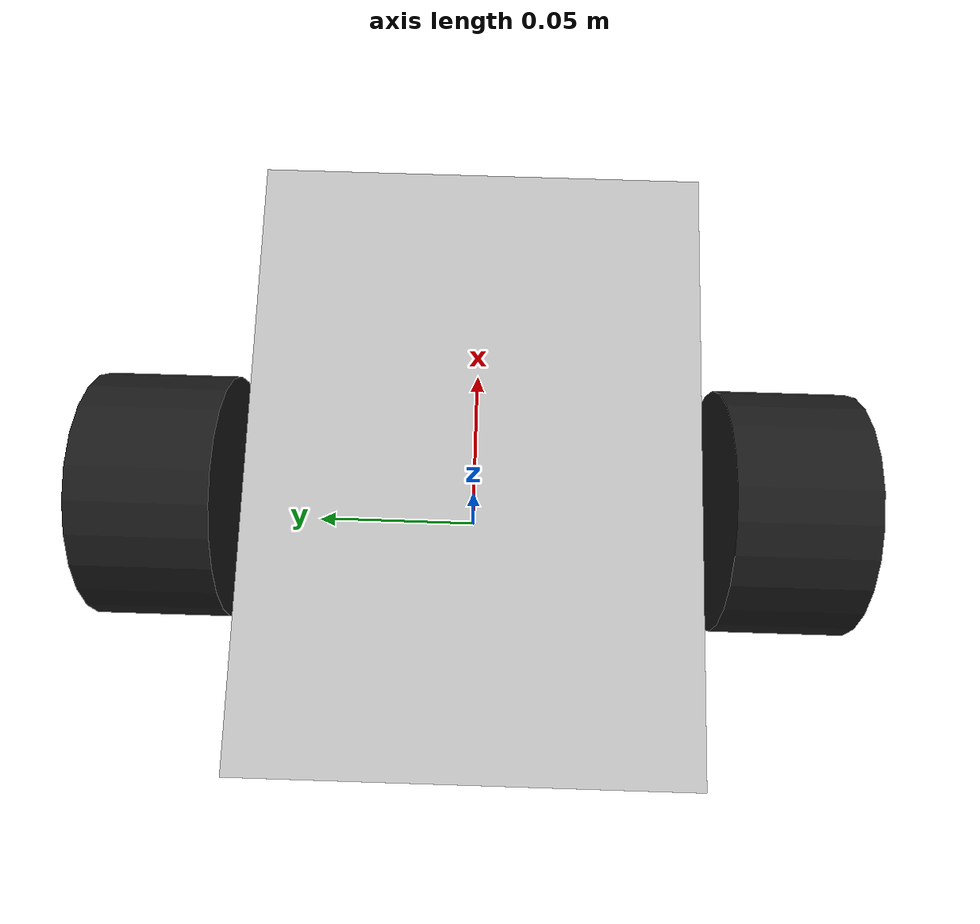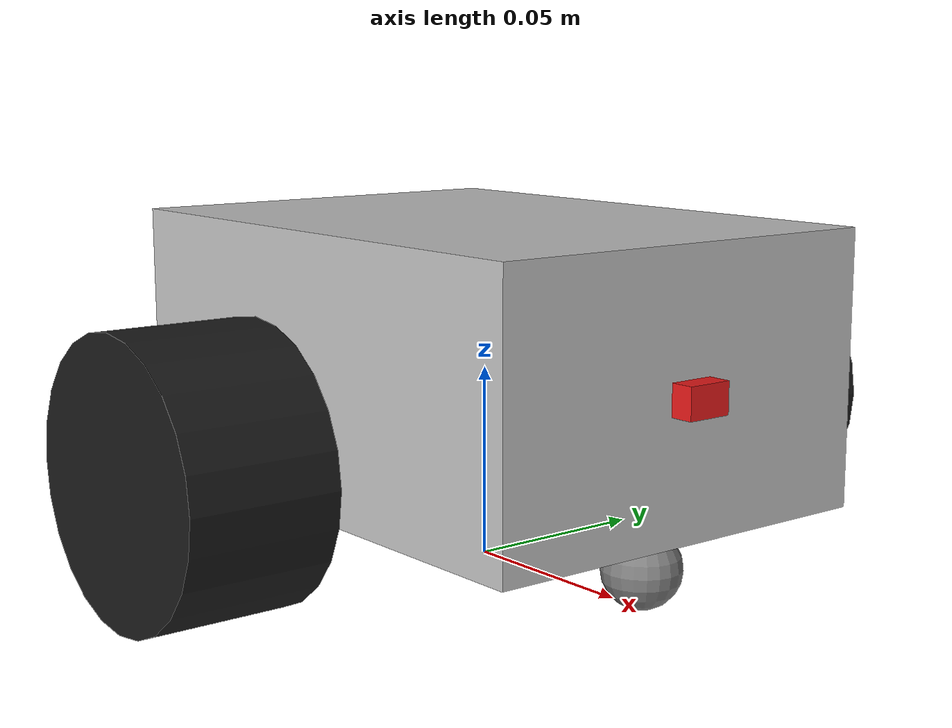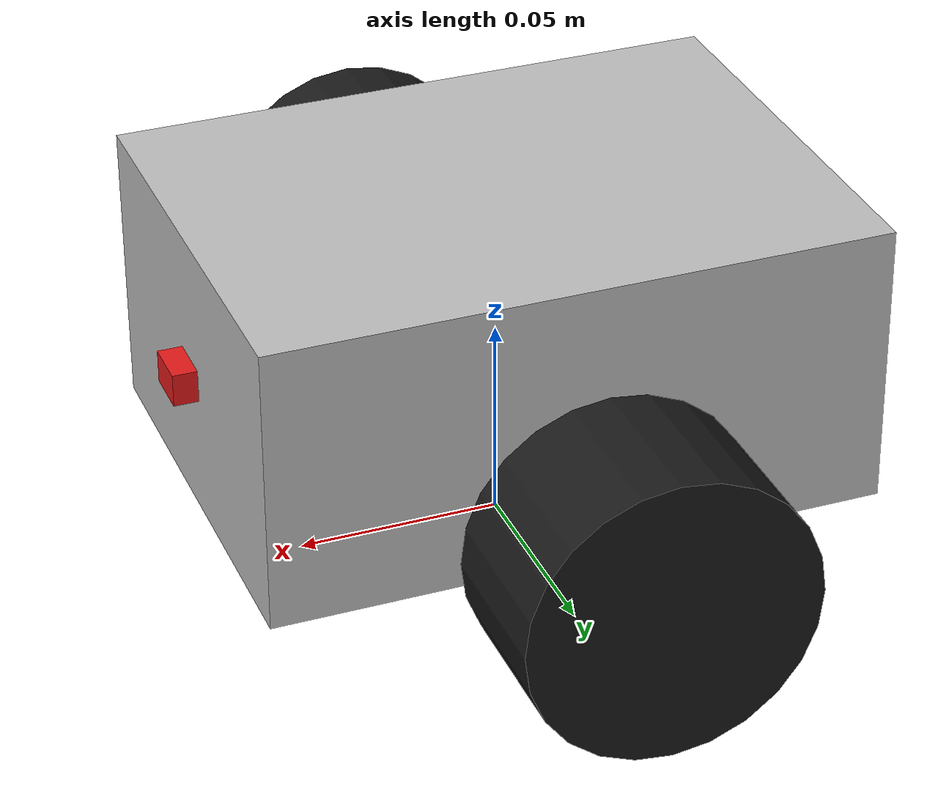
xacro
<?xml version="1.0"?>
<robot name="tof_robot" xmlns:xacro="http://www.ros.org/wiki/xacro">

  <xacro:property name="body_l"     value="0.150"/>
  <xacro:property name="body_w"     value="0.110"/>
  <xacro:property name="body_h"     value="0.070"/>
  <xacro:property name="body_mass"  value="1.5"/>
  <xacro:property name="wheel_r"    value="0.035"/>
  <xacro:property name="wheel_w"    value="0.038"/>
  <xacro:property name="wheel_sep"  value="0.175"/>
  <xacro:property name="wheel_mass" value="0.150"/>
  <xacro:property name="body_cz"    value="0.054"/>
  <xacro:property name="wj_z"       value="-0.019"/>
  <xacro:property name="wj_y"       value="0.0875"/>
  <xacro:property name="cast_r"     value="0.010"/>
  <xacro:property name="cast_fx"    value="0.060"/>
  <xacro:property name="cast_rx"    value="-0.060"/>
  <xacro:property name="cast_z"     value="-0.044"/>
  <xacro:property name="cast_mass"  value="0.050"/>

  <material name="silver"><color rgba="0.75 0.75 0.75 1.0"/></material>
  <material name="black" ><color rgba="0.10 0.10 0.10 1.0"/></material>
  <material name="gray"  ><color rgba="0.50 0.50 0.50 1.0"/></material>
  <material name="red"   ><color rgba="0.90 0.10 0.10 1.0"/></material>
  <material name="green" ><color rgba="0.10 0.80 0.10 1.0"/></material>

  <xacro:macro name="box_inertia" params="m l w h">
    <inertial>
      <mass value="${m}"/>
      <inertia ixx="${m*(w*w+h*h)/12}" ixy="0" ixz="0"
               iyy="${m*(l*l+h*h)/12}" iyz="0"
               izz="${m*(l*l+w*w)/12}"/>
    </inertial>
  </xacro:macro>

  <xacro:macro name="cylinder_inertia" params="m r h">
    <inertial>
      <mass value="${m}"/>
      <inertia ixx="${m*(3*r*r+h*h)/12}" ixy="0" ixz="0"
               iyy="${m*(3*r*r+h*h)/12}" iyz="0"
               izz="${m*r*r/2}"/>
    </inertial>
  </xacro:macro>

  <xacro:macro name="sphere_inertia" params="m r">
    <inertial>
      <mass value="${m}"/>
      <inertia ixx="${2*m*r*r/5}" ixy="0" ixz="0"
               iyy="${2*m*r*r/5}" iyz="0"
               izz="${2*m*r*r/5}"/>
    </inertial>
  </xacro:macro>

  <xacro:macro name="drive_wheel" params="name y_sign">
    <link name="${name}_wheel_link">
      <visual>
        <origin xyz="0 0 0" rpy="0 0 0"/>
        <geometry><cylinder radius="${wheel_r}" length="${wheel_w}"/></geometry>
        <material name="black"/>
      </visual>
      <collision>
        <origin xyz="0 0 0" rpy="0 0 0"/>
        <geometry><cylinder radius="${wheel_r}" length="${wheel_w}"/></geometry>
      </collision>
      <xacro:cylinder_inertia m="${wheel_mass}" r="${wheel_r}" h="${wheel_w}"/>
    </link>
    <joint name="${name}_wheel_joint" type="continuous">
      <parent link="base_link"/>
      <child  link="${name}_wheel_link"/>
      <origin xyz="0 ${y_sign*wj_y} ${wj_z}" rpy="${pi/2} 0 0"/>
      <axis   xyz="0 0 1"/>
      <dynamics damping="0.01" friction="0.1"/>
    </joint>
  </xacro:macro>

  <xacro:macro name="caster_wheel" params="name cx">
    <link name="${name}_caster_link">
      <visual>
        <origin xyz="0 0 0" rpy="0 0 0"/>
        <geometry><sphere radius="${cast_r}"/></geometry>
        <material name="gray"/>
      </visual>
      <collision>
        <origin xyz="0 0 0" rpy="0 0 0"/>
        <geometry><sphere radius="${cast_r}"/></geometry>
      </collision>
      <xacro:sphere_inertia m="${cast_mass}" r="${cast_r}"/>
    </link>
    <joint name="${name}_caster_joint" type="fixed">
      <parent link="base_link"/>
      <child  link="${name}_caster_link"/>
      <origin xyz="${cx} 0 ${cast_z}" rpy="0 0 0"/>
    </joint>
  </xacro:macro>

  <!-- TF ROOT: base_footprint at ground level -->
  <link name="base_footprint"/>

  <joint name="base_footprint_to_base" type="fixed">
    <parent link="base_footprint"/>
    <child  link="base_link"/>
    <origin xyz="0 0 ${body_cz}" rpy="0 0 0"/>
  </joint>

  <!-- CHASSIS -->
  <link name="base_link">
    <visual>
      <origin xyz="0 0 0" rpy="0 0 0"/>
      <geometry><box size="${body_l} ${body_w} ${body_h}"/></geometry>
      <material name="silver"/>
    </visual>
    <collision>
      <origin xyz="0 0 0" rpy="0 0 0"/>
      <geometry><box size="${body_l} ${body_w} ${body_h}"/></geometry>
    </collision>
    <xacro:box_inertia m="${body_mass}" l="${body_l}" w="${body_w}" h="${body_h}"/>
  </link>

  <!-- DRIVE WHEELS -->
  <xacro:drive_wheel name="left"  y_sign=" 1"/>
  <xacro:drive_wheel name="right" y_sign="-1"/>

  <!-- CASTER WHEELS -->
  <xacro:caster_wheel name="front" cx="${cast_fx}"/>
  <xacro:caster_wheel name="rear"  cx="${cast_rx}"/>

  <!-- TOF SENSOR: FIXED front face, no servo, no rotation -->
  <link name="tof_link">
    <visual>
      <origin xyz="0 0 0" rpy="0 0 0"/>
      <geometry><box size="0.012 0.012 0.008"/></geometry>
      <material name="red"/>
    </visual>
    <collision>
      <origin xyz="0 0 0" rpy="0 0 0"/>
      <geometry><box size="0.012 0.012 0.008"/></geometry>
    </collision>
    <inertial>
      <mass value="0.008"/>
      <inertia ixx="1e-7" ixy="0" ixz="0" iyy="1e-7" iyz="0" izz="1e-7"/>
    </inertial>
  </link>
  <joint name="tof_joint" type="fixed">
    <parent link="base_link"/>
    <child  link="tof_link"/>
    <origin xyz="${body_l/2} 0 0" rpy="0 0 0"/>
  </joint>

  <!-- LASER FRAME: origin of LaserScan messages -->
  <link name="laser_frame"/>
  <joint name="laser_frame_joint" type="fixed">
    <parent link="tof_link"/>
    <child  link="laser_frame"/>
    <origin xyz="0 0 0" rpy="0 0 0"/>
  </joint>

  <!-- IMU: GY-87 MPU6050 -->
  <link name="imu_link">
    <visual>
      <origin xyz="0 0 0" rpy="0 0 0"/>
      <geometry><box size="0.021 0.016 0.004"/></geometry>
      <material name="green"/>
    </visual>
    <collision>
      <origin xyz="0 0 0" rpy="0 0 0"/>
      <geometry><box size="0.021 0.016 0.004"/></geometry>
    </collision>
    <inertial>
      <mass value="0.005"/>
      <inertia ixx="1e-8" ixy="0" ixz="0" iyy="1e-8" iyz="0" izz="1e-8"/>
    </inertial>
  </link>
  <joint name="imu_joint" type="fixed">
    <parent link="base_link"/>
    <child  link="imu_link"/>
    <origin xyz="0 0 0.010" rpy="0 0 0"/>
  </joint>

  <!-- GAZEBO PLUGINS -->
  <gazebo>
    <plugin name="diff_drive" filename="libgazebo_ros_diff_drive.so">
      <ros>
        <namespace>/</namespace>
        <remapping>cmd_vel:=cmd_vel_raw</remapping>
        <remapping>odom:=wheel/odometry</remapping>
      </ros>
      <left_joint>left_wheel_joint</left_joint>
      <right_joint>right_wheel_joint</right_joint>
      <wheel_separation>${wheel_sep}</wheel_separation>
      <wheel_diameter>${2*wheel_r}</wheel_diameter>
      <max_wheel_torque>20</max_wheel_torque>
      <max_wheel_acceleration>1.0</max_wheel_acceleration>
      <publish_odom>true</publish_odom>
      <publish_odom_tf>false</publish_odom_tf>
      <publish_wheel_tf>true</publish_wheel_tf>
      <odometry_frame>odom</odometry_frame>
      <robot_base_frame>base_footprint</robot_base_frame>
    </plugin>
    <plugin name="joint_state" filename="libgazebo_ros_joint_state_publisher.so">
      <ros>
        <namespace>/</namespace>
        <remapping>~/out:=joint_states</remapping>
      </ros>
      <update_rate>30</update_rate>
      <joint_name>left_wheel_joint</joint_name>
      <joint_name>right_wheel_joint</joint_name>
    </plugin>
  </gazebo>

  <gazebo reference="laser_frame">
    <sensor type="ray" name="tof_sensor">
      <pose>0 0 0 0 0 0</pose>
      <visualize>true</visualize>
      <update_rate>5</update_rate>
      <ray>
        <scan>
          <horizontal>
            <samples>1</samples>
            <resolution>1</resolution>
            <min_angle>0.0</min_angle>
            <max_angle>0.0</max_angle>
          </horizontal>
        </scan>
        <range>
          <min>0.05</min>
          <max>4.0</max>
          <resolution>0.01</resolution>
        </range>
      </ray>
      <plugin name="tof_laser" filename="libgazebo_ros_ray_sensor.so">
        <ros>
          <namespace>/</namespace>
          <remapping>~/out:=scan</remapping>
        </ros>
        <output_type>sensor_msgs/LaserScan</output_type>
        <frame_name>laser_frame</frame_name>
      </plugin>
    </sensor>
  </gazebo>

  <gazebo reference="imu_link">
    <sensor type="imu" name="imu_sensor">
      <always_on>true</always_on>
      <update_rate>50</update_rate>
      <plugin name="imu_plugin" filename="libgazebo_ros_imu_sensor.so">
        <ros>
          <namespace>/</namespace>
          <remapping>~/out:=imu/data</remapping>
        </ros>
        <initial_orientation_as_reference>false</initial_orientation_as_reference>
      </plugin>
    </sensor>
  </gazebo>

</robot>
